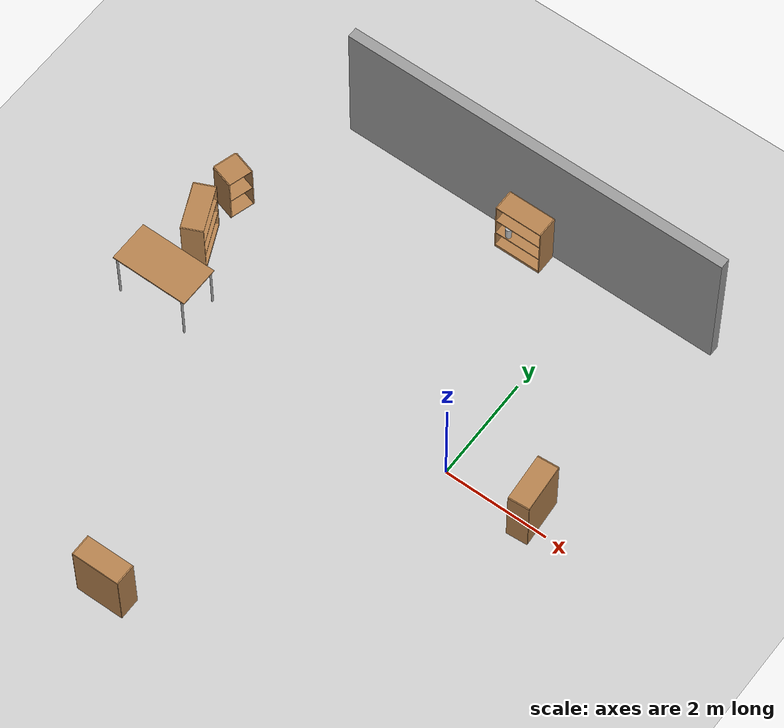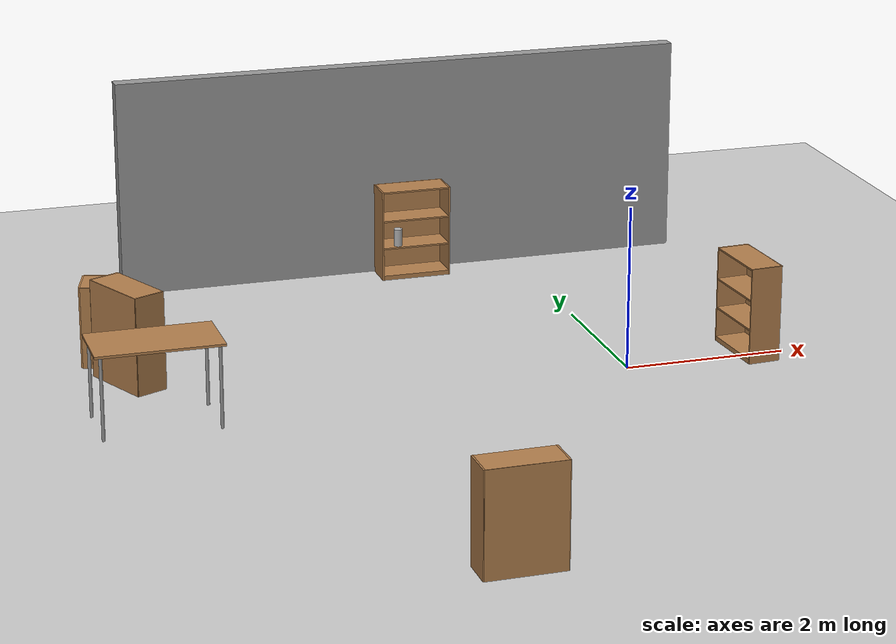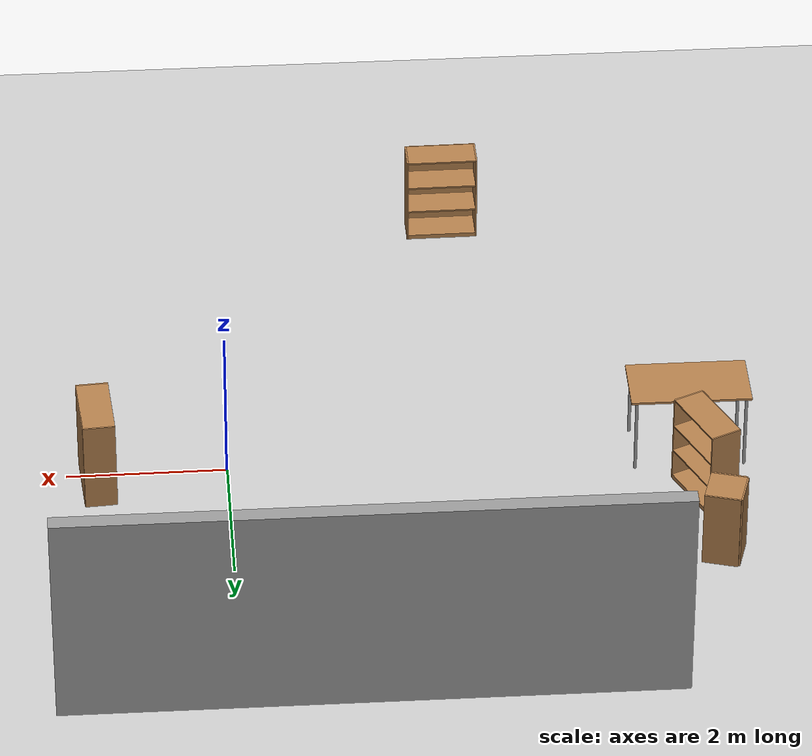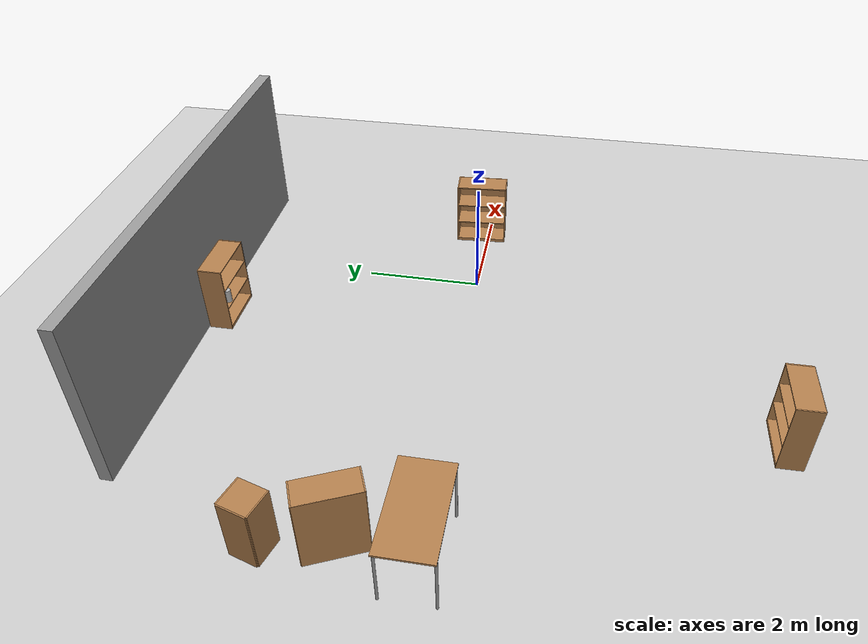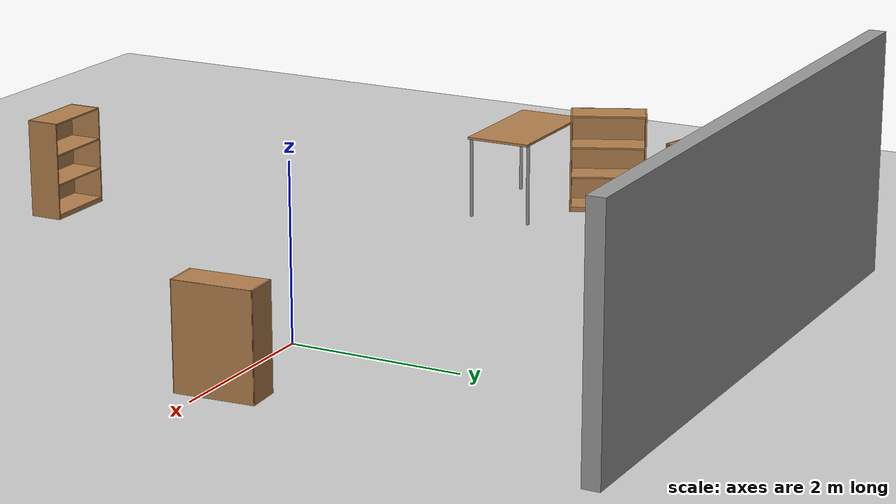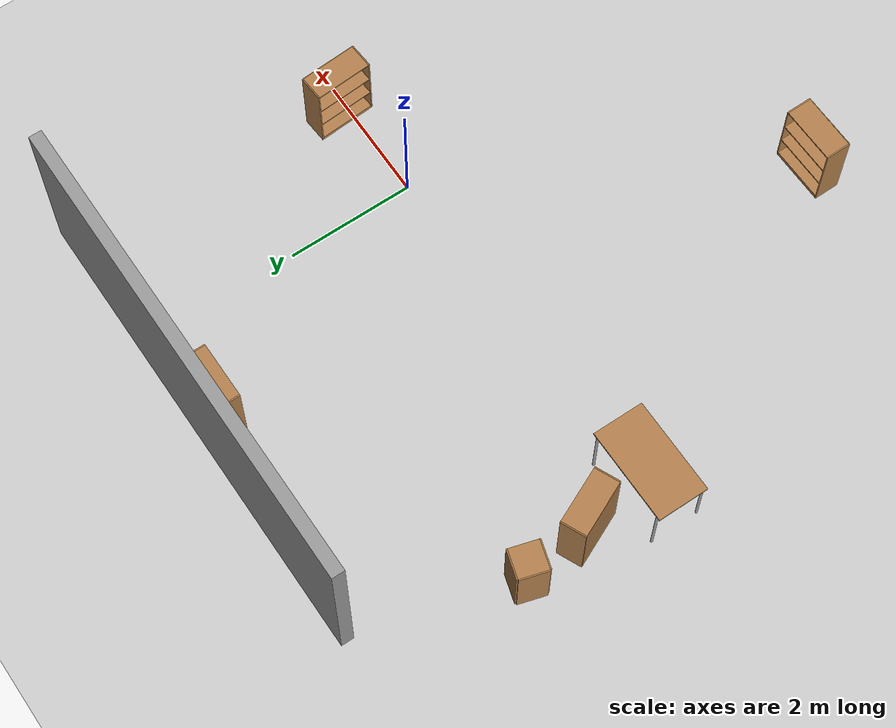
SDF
<sdf version="1.6">
 <world name="default">
  <model name="ground_plane">
   <static>1</static>
   <link name="link">
    <collision name="collision">
     <geometry><plane><normal>0 0 1</normal><size>100 100</size></plane></geometry>
     <surface>
      <contact><collide_bitmask>65535</collide_bitmask></contact>
      <friction><ode><mu>100</mu><mu2>50</mu2></ode></friction>
     </surface>
    </collision>
    <visual name="visual">
     <cast_shadows>0</cast_shadows>
     <geometry><plane><normal>0 0 1</normal><size>100 100</size></plane></geometry>
     <material>
      <script><uri>file://media/materials/scripts/gazebo.material</uri><name>Gazebo/Grey</name></script>
     </material>
    </visual>
   </link>
  </model>
  <light name="sun" type="directional">
   <pose>0 0 10 0 -0 0</pose>
   <diffuse>0.8 0.8 0.8 1</diffuse>
   <specular>0.2 0.2 0.2 1</specular>
   <attenuation>
    <range>1000</range>
    <constant>0.9</constant>
    <linear>0.01</linear>
    <quadratic>0.001</quadratic>
   </attenuation>
   <direction>-0.5 0.1 -0.9</direction>
  </light>
  <model name="bookshelf">
   <static>1</static>
   <link name="link">
    <inertial><mass>1</mass></inertial>
    <collision name="back">
     <pose>0 0.005 0.6 0 -0 0</pose>
     <geometry><box><size>0.9 0.01 1.2</size></box></geometry>
    </collision>
    <visual name="visual1">
     <pose>0 0.005 0.6 0 -0 0</pose>
     <geometry><box><size>0.9 0.01 1.2</size></box></geometry>
     <material>
      <script><uri>file://media/materials/scripts/gazebo.material</uri><name>Gazebo/Wood</name></script>
     </material>
    </visual>
    <collision name="left_side">
     <pose>0.45 -0.195 0.6 0 -0 0</pose>
     <geometry><box><size>0.02 0.4 1.2</size></box></geometry>
    </collision>
    <visual name="visual2">
     <pose>0.45 -0.195 0.6 0 -0 0</pose>
     <geometry><box><size>0.02 0.4 1.2</size></box></geometry>
     <material>
      <script><uri>file://media/materials/scripts/gazebo.material</uri><name>Gazebo/Wood</name></script>
     </material>
    </visual>
    <collision name="right_side">
     <pose>-0.45 -0.195 0.6 0 -0 0</pose>
     <geometry><box><size>0.02 0.4 1.2</size></box></geometry>
    </collision>
    <visual name="visual3">
     <pose>-0.45 -0.195 0.6 0 -0 0</pose>
     <geometry><box><size>0.02 0.4 1.2</size></box></geometry>
     <material>
      <script><uri>file://media/materials/scripts/gazebo.material</uri><name>Gazebo/Wood</name></script>
     </material>
    </visual>
    <collision name="bottom">
     <pose>0 -0.195 0.03 0 -0 0</pose>
     <geometry><box><size>0.88 0.4 0.06</size></box></geometry>
    </collision>
    <visual name="visual4">
     <pose>0 -0.195 0.03 0 -0 0</pose>
     <geometry><box><size>0.88 0.4 0.06</size></box></geometry>
     <material>
      <script><uri>file://media/materials/scripts/gazebo.material</uri><name>Gazebo/Wood</name></script>
     </material>
    </visual>
    <collision name="top">
     <pose>0 -0.195 1.19 0 -0 0</pose>
     <geometry><box><size>0.88 0.4 0.02</size></box></geometry>
    </collision>
    <visual name="visual5">
     <pose>0 -0.195 1.19 0 -0 0</pose>
     <geometry><box><size>0.88 0.4 0.02</size></box></geometry>
     <material>
      <script><uri>file://media/materials/scripts/gazebo.material</uri><name>Gazebo/Wood</name></script>
     </material>
    </visual>
    <collision name="low_shelf">
     <pose>0 -0.195 0.43 0 -0 0</pose>
     <geometry><box><size>0.88 0.4 0.02</size></box></geometry>
    </collision>
    <visual name="visual6">
     <pose>0 -0.195 0.43 0 -0 0</pose>
     <geometry><box><size>0.88 0.4 0.02</size></box></geometry>
     <material>
      <script><uri>file://media/materials/scripts/gazebo.material</uri><name>Gazebo/Wood</name></script>
     </material>
    </visual>
    <collision name="high_shelf">
     <pose>0 -0.195 0.8 0 -0 0</pose>
     <geometry><box><size>0.88 0.4 0.02</size></box></geometry>
    </collision>
    <visual name="visual7">
     <pose>0 -0.195 0.8 0 -0 0</pose>
     <geometry><box><size>0.88 0.4 0.02</size></box></geometry>
     <material>
      <script><uri>file://media/materials/scripts/gazebo.material</uri><name>Gazebo/Wood</name></script>
     </material>
    </visual>
   </link>
   <pose>1.8 0.165382 0 0 0 -1.5</pose>
  </model>
  <gravity>0 0 -9.8</gravity>
  <magnetic_field>6e-06 2.3e-05 -4.2e-05</magnetic_field>
  <atmosphere type="adiabatic"/>
  <physics name="default_physics" default="0" type="ode">
   <max_step_size>0.001</max_step_size>
   <real_time_factor>1</real_time_factor>
   <real_time_update_rate>1000</real_time_update_rate>
  </physics>
  <scene><ambient>0.4 0.4 0.4 1</ambient><background>0.7 0.7 0.7 1</background><shadows>1</shadows></scene>
  <audio><device>default</device></audio>
  <spherical_coordinates>
   <surface_model>EARTH_WGS84</surface_model>
   <latitude_deg>0</latitude_deg>
   <longitude_deg>0</longitude_deg>
   <elevation>0</elevation>
   <heading_deg>0</heading_deg>
  </spherical_coordinates>
  <model name="cabinet">
   <static>1</static>
   <link name="cabinet_bottom_plate">
    <inertial>
     <pose>0 0 -1 0 -0 0</pose>
     <inertia><ixx>2.05</ixx><ixy>0</ixy><ixz>0</ixz><iyy>2.05</iyy><iyz>0</iyz><izz>2.05</izz></inertia>
     <mass>25</mass>
    </inertial>
    <collision name="cabinet_bottom_plate_geom">
     <pose>0 0 0.01 0 -0 0</pose>
     <geometry><box><size>0.45 0.45 0.02</size></box></geometry>
    </collision>
    <visual name="cabinet_bottom_plate_geom_visual">
     <pose>0 0 0.01 0 -0 0</pose>
     <geometry><box><size>0.45 0.45 0.02</size></box></geometry>
     <material>
      <script><uri>file://media/materials/scripts/gazebo.material</uri><name>Gazebo/Wood</name></script>
     </material>
    </visual>
    <collision name="cabinet_bottom_plate_geom_cabinet_back_plate">
     <pose>0.235 0 0.51 0 -0 0</pose>
     <geometry><box><size>0.02 0.45 1.02</size></box></geometry>
    </collision>
    <visual name="cabinet_bottom_plate_geom_cabinet_back_plate_visual">
     <pose>0.235 0 0.51 0 -0 0</pose>
     <geometry><box><size>0.02 0.45 1.02</size></box></geometry>
     <material>
      <script><uri>file://media/materials/scripts/gazebo.material</uri><name>Gazebo/Wood</name></script>
     </material>
    </visual>
    <collision name="cabinet_bottom_plate_geom_cabinet_left_plate">
     <pose>0 0.235 0.51 0 -0 0</pose>
     <geometry><box><size>0.45 0.02 1.02</size></box></geometry>
    </collision>
    <visual name="cabinet_bottom_plate_geom_cabinet_left_plate_visual">
     <pose>0 0.235 0.51 0 -0 0</pose>
     <geometry><box><size>0.45 0.02 1.02</size></box></geometry>
     <material>
      <script><uri>file://media/materials/scripts/gazebo.material</uri><name>Gazebo/Wood</name></script>
     </material>
    </visual>
    <collision name="cabinet_bottom_plate_geom_cabinet_middle_plate">
     <pose>0 0 0.51 0 -0 0</pose>
     <geometry><box><size>0.45 0.45 0.02</size></box></geometry>
    </collision>
    <visual name="cabinet_bottom_plate_geom_cabinet_middle_plate_visual">
     <pose>0 0 0.51 0 -0 0</pose>
     <geometry><box><size>0.45 0.45 0.02</size></box></geometry>
     <material>
      <script><uri>file://media/materials/scripts/gazebo.material</uri><name>Gazebo/Wood</name></script>
     </material>
    </visual>
    <collision name="cabinet_bottom_plate_geom_cabinet_right_plate">
     <pose>0 -0.235 0.51 0 -0 0</pose>
     <geometry><box><size>0.45 0.02 1.02</size></box></geometry>
    </collision>
    <visual name="cabinet_bottom_plate_geom_cabinet_right_plate_visual">
     <pose>0 -0.235 0.51 0 -0 0</pose>
     <geometry><box><size>0.45 0.02 1.02</size></box></geometry>
     <material>
      <script><uri>file://media/materials/scripts/gazebo.material</uri><name>Gazebo/Wood</name></script>
     </material>
    </visual>
    <collision name="cabinet_bottom_plate_geom_cabinet_top_plate">
     <pose>0 0 1.01 0 -0 0</pose>
     <geometry><box><size>0.45 0.45 0.02</size></box></geometry>
    </collision>
    <visual name="cabinet_bottom_plate_geom_cabinet_top_plate_visual">
     <pose>0 0 1.01 0 -0 0</pose>
     <geometry><box><size>0.45 0.45 0.02</size></box></geometry>
     <material>
      <script><uri>file://media/materials/scripts/gazebo.material</uri><name>Gazebo/Wood</name></script>
     </material>
    </visual>
   </link>
   <pose>-5.96609 2.03939 0 0 -0 2.8576</pose>
  </model>
  <model name="grey_wall">
   <static>1</static>
   <link name="link">
    <pose>0 0 1.4 0 -0 0</pose>
    <collision name="collision"><geometry><box><size>7.5 0.2 2.8</size></box></geometry></collision>
    <visual name="visual">
     <cast_shadows>0</cast_shadows>
     <geometry><box><size>7.5 0.2 2.8</size></box></geometry>
     <material>
      <script>
       <uri>model://grey_wall/materials/scripts</uri>
       <uri>model://grey_wall/materials/textures</uri>
       <name>vrc/grey_wall</name>
      </script>
     </material>
    </visual>
   </link>
   <pose>-1.54486 4.48934 0 0 -0 0</pose>
  </model>
  <model name="table">
   <static>1</static>
   <link name="link">
    <collision name="surface">
     <pose>0 0 1 0 -0 0</pose>
     <geometry><box><size>1.5 0.8 0.03</size></box></geometry>
     <surface><friction><ode><mu>0.6</mu><mu2>0.6</mu2></ode></friction></surface>
    </collision>
    <visual name="visual1">
     <pose>0 0 1 0 -0 0</pose>
     <geometry><box><size>1.5 0.8 0.03</size></box></geometry>
     <material>
      <script><uri>file://media/materials/scripts/gazebo.material</uri><name>Gazebo/Wood</name></script>
     </material>
    </visual>
    <collision name="front_left_leg">
     <pose>0.68 0.38 0.5 0 -0 0</pose>
     <geometry><cylinder><radius>0.02</radius><length>1</length></cylinder></geometry>
    </collision>
    <visual name="front_left_leg">
     <pose>0.68 0.38 0.5 0 -0 0</pose>
     <geometry><cylinder><radius>0.02</radius><length>1</length></cylinder></geometry>
     <material>
      <script><uri>file://media/materials/scripts/gazebo.material</uri><name>Gazebo/Grey</name></script>
     </material>
    </visual>
    <collision name="front_right_leg">
     <pose>0.68 -0.38 0.5 0 -0 0</pose>
     <geometry><cylinder><radius>0.02</radius><length>1</length></cylinder></geometry>
    </collision>
    <visual name="front_right_leg">
     <pose>0.68 -0.38 0.5 0 -0 0</pose>
     <geometry><cylinder><radius>0.02</radius><length>1</length></cylinder></geometry>
     <material>
      <script><uri>file://media/materials/scripts/gazebo.material</uri><name>Gazebo/Grey</name></script>
     </material>
    </visual>
    <collision name="back_right_leg">
     <pose>-0.68 -0.38 0.5 0 -0 0</pose>
     <geometry><cylinder><radius>0.02</radius><length>1</length></cylinder></geometry>
    </collision>
    <visual name="back_right_leg">
     <pose>-0.68 -0.38 0.5 0 -0 0</pose>
     <geometry><cylinder><radius>0.02</radius><length>1</length></cylinder></geometry>
     <material>
      <script><uri>file://media/materials/scripts/gazebo.material</uri><name>Gazebo/Grey</name></script>
     </material>
    </visual>
    <collision name="back_left_leg">
     <pose>-0.68 0.38 0.5 0 -0 0</pose>
     <geometry><cylinder><radius>0.02</radius><length>1</length></cylinder></geometry>
    </collision>
    <visual name="back_left_leg">
     <pose>-0.68 0.38 0.5 0 -0 0</pose>
     <geometry><cylinder><radius>0.02</radius><length>1</length></cylinder></geometry>
     <material>
      <script><uri>file://media/materials/scripts/gazebo.material</uri><name>Gazebo/Grey</name></script>
     </material>
    </visual>
   </link>
   <pose>-5.74505 -0.104085 0 0 -0 0</pose>
  </model>
  <model name="bookshelf_0">
   <static>1</static>
   <link name="link">
    <inertial><mass>1</mass></inertial>
    <collision name="back">
     <pose>0 0.005 0.6 0 -0 0</pose>
     <geometry><box><size>0.9 0.01 1.2</size></box></geometry>
    </collision>
    <visual name="visual1">
     <pose>0 0.005 0.6 0 -0 0</pose>
     <geometry><box><size>0.9 0.01 1.2</size></box></geometry>
     <material>
      <script><uri>file://media/materials/scripts/gazebo.material</uri><name>Gazebo/Wood</name></script>
     </material>
    </visual>
    <collision name="left_side">
     <pose>0.45 -0.195 0.6 0 -0 0</pose>
     <geometry><box><size>0.02 0.4 1.2</size></box></geometry>
    </collision>
    <visual name="visual2">
     <pose>0.45 -0.195 0.6 0 -0 0</pose>
     <geometry><box><size>0.02 0.4 1.2</size></box></geometry>
     <material>
      <script><uri>file://media/materials/scripts/gazebo.material</uri><name>Gazebo/Wood</name></script>
     </material>
    </visual>
    <collision name="right_side">
     <pose>-0.45 -0.195 0.6 0 -0 0</pose>
     <geometry><box><size>0.02 0.4 1.2</size></box></geometry>
    </collision>
    <visual name="visual3">
     <pose>-0.45 -0.195 0.6 0 -0 0</pose>
     <geometry><box><size>0.02 0.4 1.2</size></box></geometry>
     <material>
      <script><uri>file://media/materials/scripts/gazebo.material</uri><name>Gazebo/Wood</name></script>
     </material>
    </visual>
    <collision name="bottom">
     <pose>0 -0.195 0.03 0 -0 0</pose>
     <geometry><box><size>0.88 0.4 0.06</size></box></geometry>
    </collision>
    <visual name="visual4">
     <pose>0 -0.195 0.03 0 -0 0</pose>
     <geometry><box><size>0.88 0.4 0.06</size></box></geometry>
     <material>
      <script><uri>file://media/materials/scripts/gazebo.material</uri><name>Gazebo/Wood</name></script>
     </material>
    </visual>
    <collision name="top">
     <pose>0 -0.195 1.19 0 -0 0</pose>
     <geometry><box><size>0.88 0.4 0.02</size></box></geometry>
    </collision>
    <visual name="visual5">
     <pose>0 -0.195 1.19 0 -0 0</pose>
     <geometry><box><size>0.88 0.4 0.02</size></box></geometry>
     <material>
      <script><uri>file://media/materials/scripts/gazebo.material</uri><name>Gazebo/Wood</name></script>
     </material>
    </visual>
    <collision name="low_shelf">
     <pose>0 -0.195 0.43 0 -0 0</pose>
     <geometry><box><size>0.88 0.4 0.02</size></box></geometry>
    </collision>
    <visual name="visual6">
     <pose>0 -0.195 0.43 0 -0 0</pose>
     <geometry><box><size>0.88 0.4 0.02</size></box></geometry>
     <material>
      <script><uri>file://media/materials/scripts/gazebo.material</uri><name>Gazebo/Wood</name></script>
     </material>
    </visual>
    <collision name="high_shelf">
     <pose>0 -0.195 0.8 0 -0 0</pose>
     <geometry><box><size>0.88 0.4 0.02</size></box></geometry>
    </collision>
    <visual name="visual7">
     <pose>0 -0.195 0.8 0 -0 0</pose>
     <geometry><box><size>0.88 0.4 0.02</size></box></geometry>
     <material>
      <script><uri>file://media/materials/scripts/gazebo.material</uri><name>Gazebo/Wood</name></script>
     </material>
    </visual>
   </link>
   <pose>-6.02464 0.894208 0.105779 0 -0 1.99649</pose>
  </model>
  <model name="bookshelf_1">
   <static>1</static>
   <link name="link">
    <inertial><mass>1</mass></inertial>
    <collision name="back">
     <pose>0 0.005 0.6 0 -0 0</pose>
     <geometry><box><size>0.9 0.01 1.2</size></box></geometry>
    </collision>
    <visual name="visual1">
     <pose>0 0.005 0.6 0 -0 0</pose>
     <geometry><box><size>0.9 0.01 1.2</size></box></geometry>
     <material>
      <script><uri>file://media/materials/scripts/gazebo.material</uri><name>Gazebo/Wood</name></script>
     </material>
    </visual>
    <collision name="left_side">
     <pose>0.45 -0.195 0.6 0 -0 0</pose>
     <geometry><box><size>0.02 0.4 1.2</size></box></geometry>
    </collision>
    <visual name="visual2">
     <pose>0.45 -0.195 0.6 0 -0 0</pose>
     <geometry><box><size>0.02 0.4 1.2</size></box></geometry>
     <material>
      <script><uri>file://media/materials/scripts/gazebo.material</uri><name>Gazebo/Wood</name></script>
     </material>
    </visual>
    <collision name="right_side">
     <pose>-0.45 -0.195 0.6 0 -0 0</pose>
     <geometry><box><size>0.02 0.4 1.2</size></box></geometry>
    </collision>
    <visual name="visual3">
     <pose>-0.45 -0.195 0.6 0 -0 0</pose>
     <geometry><box><size>0.02 0.4 1.2</size></box></geometry>
     <material>
      <script><uri>file://media/materials/scripts/gazebo.material</uri><name>Gazebo/Wood</name></script>
     </material>
    </visual>
    <collision name="bottom">
     <pose>0 -0.195 0.03 0 -0 0</pose>
     <geometry><box><size>0.88 0.4 0.06</size></box></geometry>
    </collision>
    <visual name="visual4">
     <pose>0 -0.195 0.03 0 -0 0</pose>
     <geometry><box><size>0.88 0.4 0.06</size></box></geometry>
     <material>
      <script><uri>file://media/materials/scripts/gazebo.material</uri><name>Gazebo/Wood</name></script>
     </material>
    </visual>
    <collision name="top">
     <pose>0 -0.195 1.19 0 -0 0</pose>
     <geometry><box><size>0.88 0.4 0.02</size></box></geometry>
    </collision>
    <visual name="visual5">
     <pose>0 -0.195 1.19 0 -0 0</pose>
     <geometry><box><size>0.88 0.4 0.02</size></box></geometry>
     <material>
      <script><uri>file://media/materials/scripts/gazebo.material</uri><name>Gazebo/Wood</name></script>
     </material>
    </visual>
    <collision name="low_shelf">
     <pose>0 -0.195 0.43 0 -0 0</pose>
     <geometry><box><size>0.88 0.4 0.02</size></box></geometry>
    </collision>
    <visual name="visual6">
     <pose>0 -0.195 0.43 0 -0 0</pose>
     <geometry><box><size>0.88 0.4 0.02</size></box></geometry>
     <material>
      <script><uri>file://media/materials/scripts/gazebo.material</uri><name>Gazebo/Wood</name></script>
     </material>
    </visual>
    <collision name="high_shelf">
     <pose>0 -0.195 0.8 0 -0 0</pose>
     <geometry><box><size>0.88 0.4 0.02</size></box></geometry>
    </collision>
    <visual name="visual7">
     <pose>0 -0.195 0.8 0 -0 0</pose>
     <geometry><box><size>0.88 0.4 0.02</size></box></geometry>
     <material>
      <script><uri>file://media/materials/scripts/gazebo.material</uri><name>Gazebo/Wood</name></script>
     </material>
    </visual>
   </link>
   <pose>-1.46807 4.36703 0 0 -0 0</pose>
  </model>
  <model name="bookshelf_2">
   <static>1</static>
   <link name="link">
    <inertial><mass>1</mass></inertial>
    <collision name="back">
     <pose>0 0.005 0.6 0 -0 0</pose>
     <geometry><box><size>0.9 0.01 1.2</size></box></geometry>
    </collision>
    <visual name="visual1">
     <pose>0 0.005 0.6 0 -0 0</pose>
     <geometry><box><size>0.9 0.01 1.2</size></box></geometry>
     <material>
      <script><uri>file://media/materials/scripts/gazebo.material</uri><name>Gazebo/Wood</name></script>
     </material>
    </visual>
    <collision name="left_side">
     <pose>0.45 -0.195 0.6 0 -0 0</pose>
     <geometry><box><size>0.02 0.4 1.2</size></box></geometry>
    </collision>
    <visual name="visual2">
     <pose>0.45 -0.195 0.6 0 -0 0</pose>
     <geometry><box><size>0.02 0.4 1.2</size></box></geometry>
     <material>
      <script><uri>file://media/materials/scripts/gazebo.material</uri><name>Gazebo/Wood</name></script>
     </material>
    </visual>
    <collision name="right_side">
     <pose>-0.45 -0.195 0.6 0 -0 0</pose>
     <geometry><box><size>0.02 0.4 1.2</size></box></geometry>
    </collision>
    <visual name="visual3">
     <pose>-0.45 -0.195 0.6 0 -0 0</pose>
     <geometry><box><size>0.02 0.4 1.2</size></box></geometry>
     <material>
      <script><uri>file://media/materials/scripts/gazebo.material</uri><name>Gazebo/Wood</name></script>
     </material>
    </visual>
    <collision name="bottom">
     <pose>0 -0.195 0.03 0 -0 0</pose>
     <geometry><box><size>0.88 0.4 0.06</size></box></geometry>
    </collision>
    <visual name="visual4">
     <pose>0 -0.195 0.03 0 -0 0</pose>
     <geometry><box><size>0.88 0.4 0.06</size></box></geometry>
     <material>
      <script><uri>file://media/materials/scripts/gazebo.material</uri><name>Gazebo/Wood</name></script>
     </material>
    </visual>
    <collision name="top">
     <pose>0 -0.195 1.19 0 -0 0</pose>
     <geometry><box><size>0.88 0.4 0.02</size></box></geometry>
    </collision>
    <visual name="visual5">
     <pose>0 -0.195 1.19 0 -0 0</pose>
     <geometry><box><size>0.88 0.4 0.02</size></box></geometry>
     <material>
      <script><uri>file://media/materials/scripts/gazebo.material</uri><name>Gazebo/Wood</name></script>
     </material>
    </visual>
    <collision name="low_shelf">
     <pose>0 -0.195 0.43 0 -0 0</pose>
     <geometry><box><size>0.88 0.4 0.02</size></box></geometry>
    </collision>
    <visual name="visual6">
     <pose>0 -0.195 0.43 0 -0 0</pose>
     <geometry><box><size>0.88 0.4 0.02</size></box></geometry>
     <material>
      <script><uri>file://media/materials/scripts/gazebo.material</uri><name>Gazebo/Wood</name></script>
     </material>
    </visual>
    <collision name="high_shelf">
     <pose>0 -0.195 0.8 0 -0 0</pose>
     <geometry><box><size>0.88 0.4 0.02</size></box></geometry>
    </collision>
    <visual name="visual7">
     <pose>0 -0.195 0.8 0 -0 0</pose>
     <geometry><box><size>0.88 0.4 0.02</size></box></geometry>
     <material>
      <script><uri>file://media/materials/scripts/gazebo.material</uri><name>Gazebo/Wood</name></script>
     </material>
    </visual>
   </link>
   <pose>-3.03056 -5.23464 0 0 0 -3.13068</pose>
  </model>
  <model name="beer">
   <link name="link">
    <pose>0 0 0.115 0 -0 0</pose>
    <inertial>
     <mass>0.39</mass>
     <inertia><ixx>0.00058</ixx><ixy>0</ixy><ixz>0</ixz><iyy>0.00058</iyy><iyz>0</iyz><izz>0.00019</izz></inertia>
    </inertial>
    <collision name="collision">
     <geometry><cylinder><radius>0.055</radius><length>0.23</length></cylinder></geometry>
    </collision>
    <visual name="visual">
     <geometry><cylinder><radius>0.055</radius><length>0.23</length></cylinder></geometry>
     <material>
      <script>
       <uri>model://beer/materials/scripts</uri>
       <uri>model://beer/materials/textures</uri>
       <name>Beer/Diffuse</name>
      </script>
     </material>
    </visual>
   </link>
   <pose>-1.69837 4.04286 0.439999 1.7e-05 0 5.2e-05</pose>
  </model>
 </world>
</sdf>
